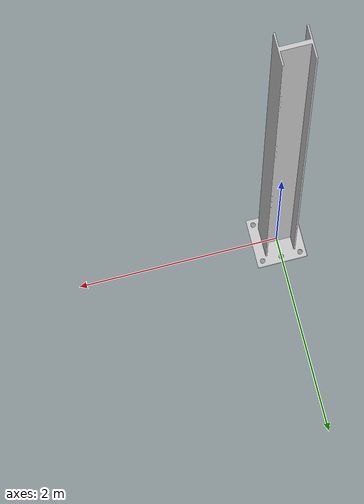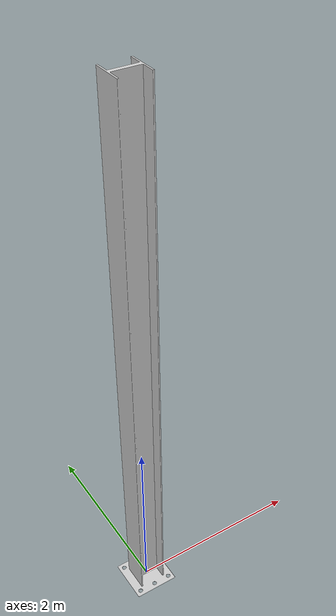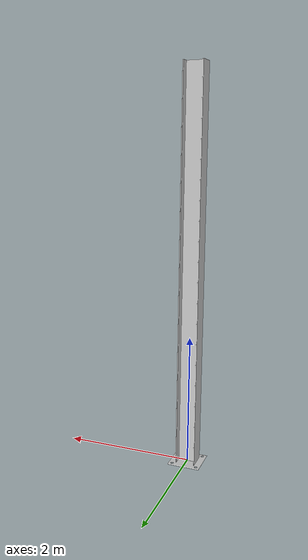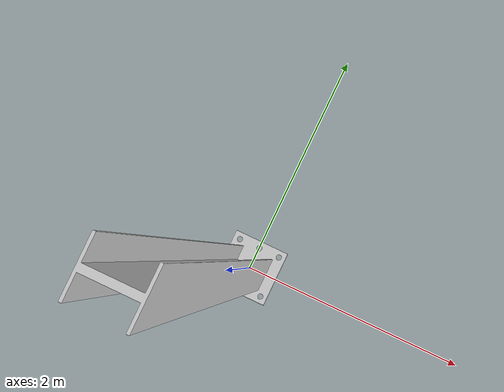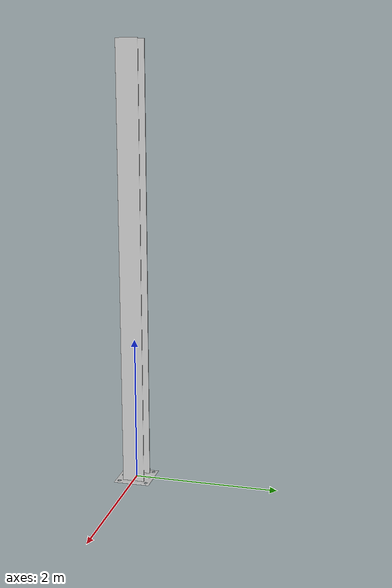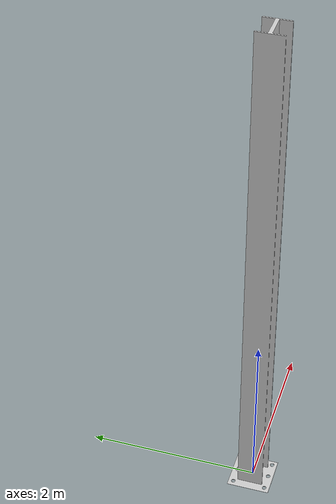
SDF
<sdf version="1.7">
<model name="support_pole" canonical_link="node0_link">
  <link name="node0_link">
    <collision name="node0_collision">
      <pose relative_to="node0_link">0.00000 0.00000 0.00000 0.00000 0.00000 0.00000</pose>
      <geometry>
        <mesh>
          <uri>meshes/Body.dae</uri>
          <scale>1.00000 1.00000 1.00000</scale>
        </mesh>
      </geometry>
      <surface>
        <contact><ode>  <max_vel>0.001</max_vel><min_depth>0.01</min_depth><kd>1e15</kd>  </ode></contact>
      </surface>
    </collision>
    <inertial>
      <inertia>
        <ixx>1493.69948</ixx>
        <ixy>-0.00000</ixy>
        <ixz>0.05031</ixz>
        <iyy>1494.98147</iyy>
        <iyz>0.01981</iyz>
        <izz>3.31750</izz>
      </inertia>
      <pose relative_to="node0_link">0.00000 -0.00000 2.87289 0.00000 0.00000 0.00000</pose>
      <mass>200.00000</mass>
    </inertial>
    <visual name="node0">
      <material>
        <diffuse>0.80000 0.80000 0.80000 1.00000</diffuse>
        <specular>0.40000 0.40000 0.40000 0.49804</specular>
        <emissive>0.00000 0.00000 0.00000 1.00000</emissive>
      </material>
      <pose relative_to="node0_link">0.00000 0.00000 0.00000 0.00000 0.00000 0.00000</pose>
      <geometry>
        <mesh>
          <uri>meshes/Body.dae</uri>
          <scale>1.00000 1.00000 1.00000</scale>
        </mesh>
      </geometry>
    </visual>
  </link>
</model>
</sdf>
